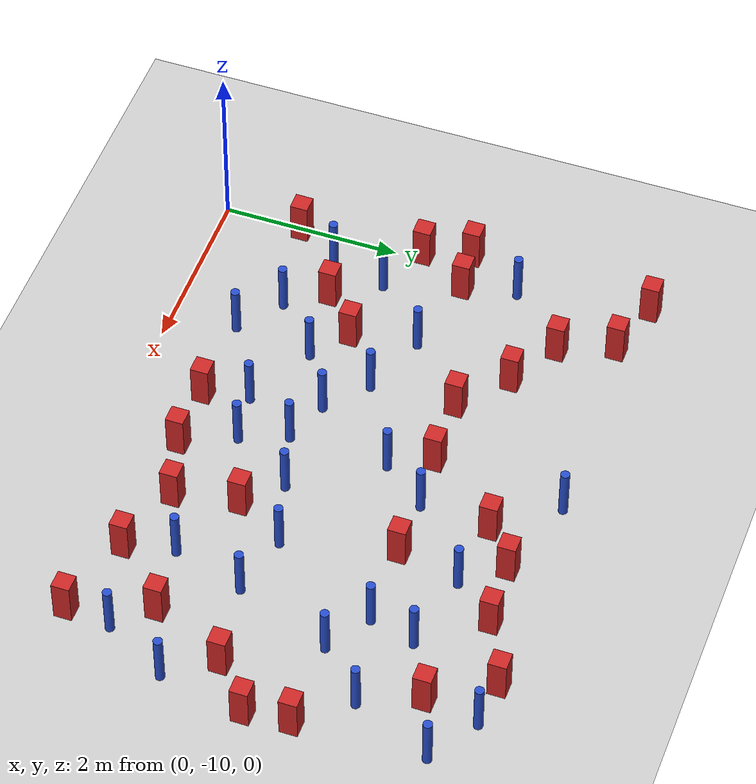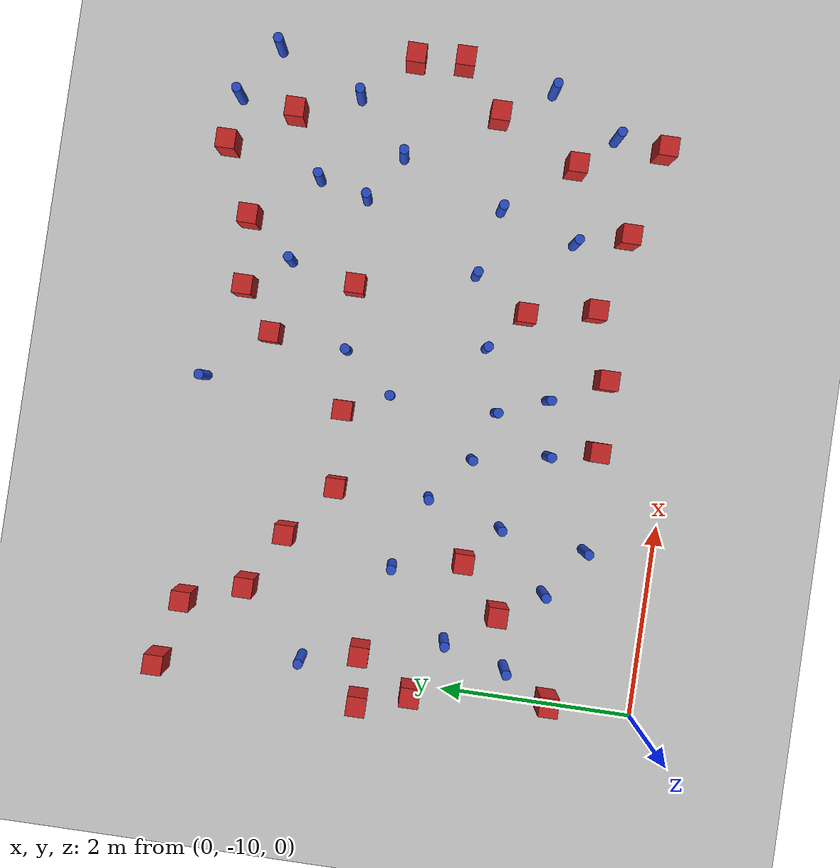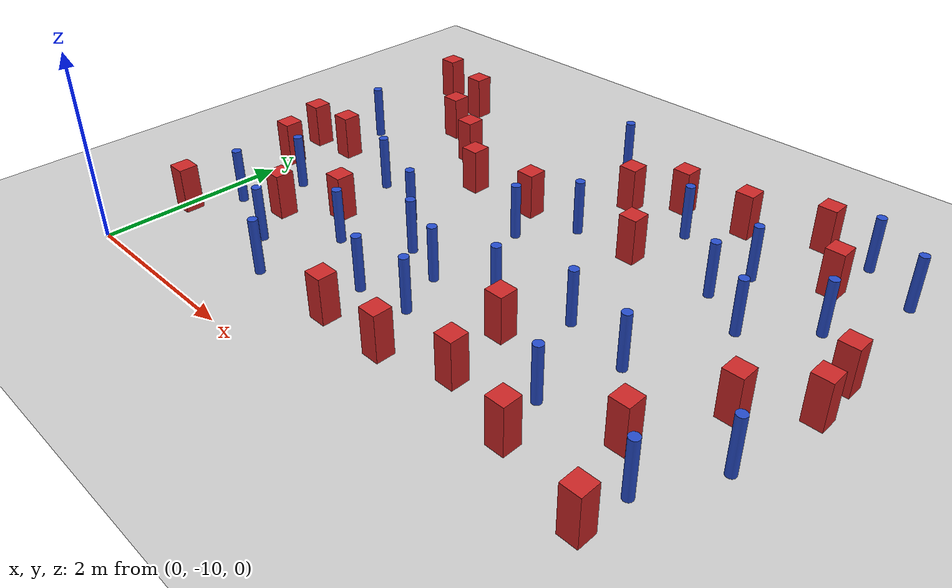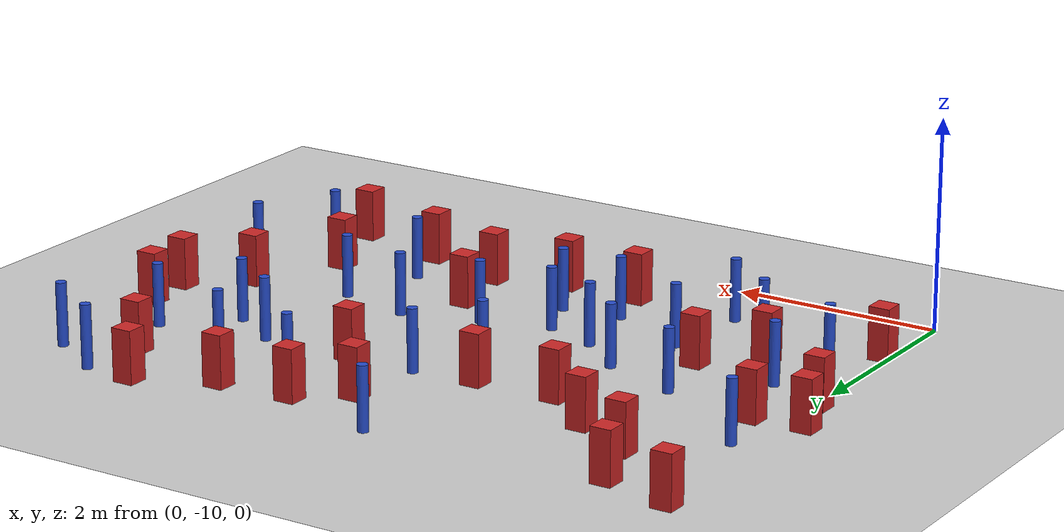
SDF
<sdf version="1.6">
 <world name="default">
  <model name="ground_plane">
   <static>1</static>
   <link name="link">
    <collision name="collision">
     <geometry><plane><normal>0 0 1</normal><size>100 100</size></plane></geometry>
     <surface><friction><ode><mu>100</mu><mu2>50</mu2></ode></friction></surface>
    </collision>
    <visual name="visual">
     <cast_shadows>0</cast_shadows>
     <geometry><plane><normal>0 0 1</normal><size>100 100</size></plane></geometry>
     <material>
      <ambient>1.0 1.0 1.0 1.0</ambient>
      <diffuse>0.8 0.8 0.8 1.0</diffuse>
      <specular>0.01 0.01 0.01 1.000000</specular>
     </material>
    </visual>
   </link>
  </model>
  <model name="pole_obstacle2">
   <static>true</static>
   <pose>1.97071160318 -7.58667702592 7.38925637345e-09 -8.471706928e-08 1.24976765202e-08 -1.7451309301e-07</pose>
   <link name="link">
    <pose>0 0 0.3 0 -0 0</pose>
    <inertial>
     <mass>1</mass>
     <inertia><ixx>0.145833</ixx><ixy>0</ixy><ixz>0</ixz><iyy>0.145833</iyy><iyz>0</iyz><izz>0.125</izz></inertia>
    </inertial>
    <collision name="collision">
     <geometry><cylinder><radius>0.05</radius><length>.6</length></cylinder></geometry>
    </collision>
    <visual name="visual">
     <geometry><cylinder><radius>0.05</radius><length>.6</length></cylinder></geometry>
     <material>
      <script><name>Gazebo/Blue</name><uri>file://media/materials/scripts/gazebo.material</uri></script>
     </material>
    </visual>
   </link>
  </model>
  <model name="square_post_obstacle6">
   <static>true</static>
   <pose>3.42528673768 -9.2332077088 1.91545236811e-07 -7.35059704564e-06 1.12565212e-07 2.39332434364e-05</pose>
   <link name="link">
    <pose>0 0 0.25 0 -0 0</pose>
    <inertial>
     <mass>100</mass>
     <inertia>
      <ixx>0.166667</ixx>
      <ixy>0</ixy>
      <ixz>0</ixz>
      <iyy>0.166667</iyy>
      <iyz>0</iyz>
      <izz>0.166667</izz>
     </inertia>
    </inertial>
    <collision name="collision"><geometry><box><size>.2 .2 .5</size></box></geometry></collision>
    <visual name="visual">
     <geometry><box><size>.2 .2 .5</size></box></geometry>
     <material>
      <script><name>Gazebo/Red</name><uri>file://media/materials/scripts/gazebo.material</uri></script>
     </material>
    </visual>
   </link>
  </model>
  <model name="pole_obstacle12">
   <static>true</static>
   <pose>5.93119352826 -8.99276088064 7.38925637345e-09 -8.471706928e-08 1.24976765081e-08 -1.74513093015e-07</pose>
   <link name="link">
    <pose>0 0 0.3 0 -0 0</pose>
    <inertial>
     <mass>1</mass>
     <inertia><ixx>0.145833</ixx><ixy>0</ixy><ixz>0</ixz><iyy>0.145833</iyy><iyz>0</iyz><izz>0.125</izz></inertia>
    </inertial>
    <collision name="collision">
     <geometry><cylinder><radius>0.05</radius><length>.6</length></cylinder></geometry>
    </collision>
    <visual name="visual">
     <geometry><cylinder><radius>0.05</radius><length>.6</length></cylinder></geometry>
     <material>
      <script><name>Gazebo/Blue</name><uri>file://media/materials/scripts/gazebo.material</uri></script>
     </material>
    </visual>
   </link>
  </model>
  <model name="pole_obstacle17">
   <static>true</static>
   <pose>2.56909360856 -8.75180454461 7.38925637345e-09 -8.47170692793e-08 1.24976764408e-08 -1.74513093041e-07</pose>
   <link name="link">
    <pose>0 0 0.3 0 -0 0</pose>
    <inertial>
     <mass>1</mass>
     <inertia><ixx>0.145833</ixx><ixy>0</ixy><ixz>0</ixz><iyy>0.145833</iyy><iyz>0</iyz><izz>0.125</izz></inertia>
    </inertial>
    <collision name="collision">
     <geometry><cylinder><radius>0.05</radius><length>.6</length></cylinder></geometry>
    </collision>
    <visual name="visual">
     <geometry><cylinder><radius>0.05</radius><length>.6</length></cylinder></geometry>
     <material>
      <script><name>Gazebo/Blue</name><uri>file://media/materials/scripts/gazebo.material</uri></script>
     </material>
    </visual>
   </link>
  </model>
  <model name="square_post_obstacle28">
   <static>true</static>
   <pose>1.40396660509 -6.17842980734 1.91545236811e-07 -7.35059704564e-06 1.12565212e-07 2.39332434364e-05</pose>
   <link name="link">
    <pose>0 0 0.25 0 -0 0</pose>
    <inertial>
     <mass>100</mass>
     <inertia>
      <ixx>0.166667</ixx>
      <ixy>0</ixy>
      <ixz>0</ixz>
      <iyy>0.166667</iyy>
      <iyz>0</iyz>
      <izz>0.166667</izz>
     </inertia>
    </inertial>
    <collision name="collision"><geometry><box><size>.2 .2 .5</size></box></geometry></collision>
    <visual name="visual">
     <geometry><box><size>.2 .2 .5</size></box></geometry>
     <material>
      <script><name>Gazebo/Red</name><uri>file://media/materials/scripts/gazebo.material</uri></script>
     </material>
    </visual>
   </link>
  </model>
  <model name="square_post_obstacle32">
   <static>true</static>
   <pose>5.58172185531 -8.61118597874 1.91545236811e-07 -7.35059704564e-06 1.12565212e-07 2.39332434364e-05</pose>
   <link name="link">
    <pose>0 0 0.25 0 -0 0</pose>
    <inertial>
     <mass>100</mass>
     <inertia>
      <ixx>0.166667</ixx>
      <ixy>0</ixy>
      <ixz>0</ixz>
      <iyy>0.166667</iyy>
      <iyz>0</iyz>
      <izz>0.166667</izz>
     </inertia>
    </inertial>
    <collision name="collision"><geometry><box><size>.2 .2 .5</size></box></geometry></collision>
    <visual name="visual">
     <geometry><box><size>.2 .2 .5</size></box></geometry>
     <material>
      <script><name>Gazebo/Red</name><uri>file://media/materials/scripts/gazebo.material</uri></script>
     </material>
    </visual>
   </link>
  </model>
  <model name="pole_obstacle30">
   <static>true</static>
   <pose>5.02868644802 -7.91412602588 7.38925637345e-09 -8.47170692796e-08 1.24976764786e-08 -1.74513093032e-07</pose>
   <link name="link">
    <pose>0 0 0.3 0 -0 0</pose>
    <inertial>
     <mass>1</mass>
     <inertia><ixx>0.145833</ixx><ixy>0</ixy><ixz>0</ixz><iyy>0.145833</iyy><iyz>0</iyz><izz>0.125</izz></inertia>
    </inertial>
    <collision name="collision">
     <geometry><cylinder><radius>0.05</radius><length>.6</length></cylinder></geometry>
    </collision>
    <visual name="visual">
     <geometry><cylinder><radius>0.05</radius><length>.6</length></cylinder></geometry>
     <material>
      <script><name>Gazebo/Blue</name><uri>file://media/materials/scripts/gazebo.material</uri></script>
     </material>
    </visual>
   </link>
  </model>
  <model name="pole_obstacle36">
   <static>true</static>
   <pose>0.537227378862 -7.95443706062 7.38925637345e-09 -8.47170692799e-08 1.24976764982e-08 -1.74513093021e-07</pose>
   <link name="link">
    <pose>0 0 0.3 0 -0 0</pose>
    <inertial>
     <mass>1</mass>
     <inertia><ixx>0.145833</ixx><ixy>0</ixy><ixz>0</ixz><iyy>0.145833</iyy><iyz>0</iyz><izz>0.125</izz></inertia>
    </inertial>
    <collision name="collision">
     <geometry><cylinder><radius>0.05</radius><length>.6</length></cylinder></geometry>
    </collision>
    <visual name="visual">
     <geometry><cylinder><radius>0.05</radius><length>.6</length></cylinder></geometry>
     <material>
      <script><name>Gazebo/Blue</name><uri>file://media/materials/scripts/gazebo.material</uri></script>
     </material>
    </visual>
   </link>
  </model>
  <model name="pole_obstacle40">
   <static>true</static>
   <pose>4.79022406759 -8.7171439386 7.38925637345e-09 -8.471706928e-08 1.24976765081e-08 -1.74513093015e-07</pose>
   <link name="link">
    <pose>0 0 0.3 0 -0 0</pose>
    <inertial>
     <mass>1</mass>
     <inertia><ixx>0.145833</ixx><ixy>0</ixy><ixz>0</ixz><iyy>0.145833</iyy><iyz>0</iyz><izz>0.125</izz></inertia>
    </inertial>
    <collision name="collision">
     <geometry><cylinder><radius>0.05</radius><length>.6</length></cylinder></geometry>
    </collision>
    <visual name="visual">
     <geometry><cylinder><radius>0.05</radius><length>.6</length></cylinder></geometry>
     <material>
      <script><name>Gazebo/Blue</name><uri>file://media/materials/scripts/gazebo.material</uri></script>
     </material>
    </visual>
   </link>
  </model>
  <model name="pole_obstacle44">
   <static>true</static>
   <pose>2.93795441188 -8.15360518143 7.38925637345e-09 -8.47170692793e-08 1.24976764408e-08 -1.74513093041e-07</pose>
   <link name="link">
    <pose>0 0 0.3 0 -0 0</pose>
    <inertial>
     <mass>1</mass>
     <inertia><ixx>0.145833</ixx><ixy>0</ixy><ixz>0</ixz><iyy>0.145833</iyy><iyz>0</iyz><izz>0.125</izz></inertia>
    </inertial>
    <collision name="collision">
     <geometry><cylinder><radius>0.05</radius><length>.6</length></cylinder></geometry>
    </collision>
    <visual name="visual">
     <geometry><cylinder><radius>0.05</radius><length>.6</length></cylinder></geometry>
     <material>
      <script><name>Gazebo/Blue</name><uri>file://media/materials/scripts/gazebo.material</uri></script>
     </material>
    </visual>
   </link>
  </model>
  <model name="square_post_obstacle49">
   <static>true</static>
   <pose>5.7312948398 -5.66216514473 1.91545236811e-07 -7.35059704564e-06 1.12565212e-07 2.39332434364e-05</pose>
   <link name="link">
    <pose>0 0 0.25 0 -0 0</pose>
    <inertial>
     <mass>100</mass>
     <inertia>
      <ixx>0.166667</ixx>
      <ixy>0</ixy>
      <ixz>0</ixz>
      <iyy>0.166667</iyy>
      <iyz>0</iyz>
      <izz>0.166667</izz>
     </inertia>
    </inertial>
    <collision name="collision"><geometry><box><size>.2 .2 .5</size></box></geometry></collision>
    <visual name="visual">
     <geometry><box><size>.2 .2 .5</size></box></geometry>
     <material>
      <script><name>Gazebo/Red</name><uri>file://media/materials/scripts/gazebo.material</uri></script>
     </material>
    </visual>
   </link>
  </model>
  <model name="square_post_obstacle50">
   <static>true</static>
   <pose>4.58564156272 -5.34331117135 1.91545236811e-07 -7.35059704564e-06 1.12565212e-07 2.39332434364e-05</pose>
   <link name="link">
    <pose>0 0 0.25 0 -0 0</pose>
    <inertial>
     <mass>100</mass>
     <inertia>
      <ixx>0.166667</ixx>
      <ixy>0</ixy>
      <ixz>0</ixz>
      <iyy>0.166667</iyy>
      <iyz>0</iyz>
      <izz>0.166667</izz>
     </inertia>
    </inertial>
    <collision name="collision"><geometry><box><size>.2 .2 .5</size></box></geometry></collision>
    <visual name="visual">
     <geometry><box><size>.2 .2 .5</size></box></geometry>
     <material>
      <script><name>Gazebo/Red</name><uri>file://media/materials/scripts/gazebo.material</uri></script>
     </material>
    </visual>
   </link>
  </model>
  <model name="pole_obstacle55">
   <static>true</static>
   <pose>0.346977114706 -8.60637457879 7.38925637345e-09 -8.47170692796e-08 1.24976764724e-08 -1.74513093036e-07</pose>
   <link name="link">
    <pose>0 0 0.3 0 -0 0</pose>
    <inertial>
     <mass>1</mass>
     <inertia><ixx>0.145833</ixx><ixy>0</ixy><ixz>0</ixz><iyy>0.145833</iyy><iyz>0</iyz><izz>0.125</izz></inertia>
    </inertial>
    <collision name="collision">
     <geometry><cylinder><radius>0.05</radius><length>.6</length></cylinder></geometry>
    </collision>
    <visual name="visual">
     <geometry><cylinder><radius>0.05</radius><length>.6</length></cylinder></geometry>
     <material>
      <script><name>Gazebo/Blue</name><uri>file://media/materials/scripts/gazebo.material</uri></script>
     </material>
    </visual>
   </link>
  </model>
  <model name="square_post_obstacle58">
   <static>true</static>
   <pose>1.94689493672 -6.62401268792 1.91545236811e-07 -7.35059704564e-06 1.12565212e-07 2.39332434364e-05</pose>
   <link name="link">
    <pose>0 0 0.25 0 -0 0</pose>
    <inertial>
     <mass>100</mass>
     <inertia>
      <ixx>0.166667</ixx>
      <ixy>0</ixy>
      <ixz>0</ixz>
      <iyy>0.166667</iyy>
      <iyz>0</iyz>
      <izz>0.166667</izz>
     </inertia>
    </inertial>
    <collision name="collision"><geometry><box><size>.2 .2 .5</size></box></geometry></collision>
    <visual name="visual">
     <geometry><box><size>.2 .2 .5</size></box></geometry>
     <material>
      <script><name>Gazebo/Red</name><uri>file://media/materials/scripts/gazebo.material</uri></script>
     </material>
    </visual>
   </link>
  </model>
  <model name="square_post_obstacle62">
   <static>true</static>
   <pose>3.86413966058 -5.39639171389 1.91545236811e-07 -7.35059704564e-06 1.12565212e-07 2.39332434364e-05</pose>
   <link name="link">
    <pose>0 0 0.25 0 -0 0</pose>
    <inertial>
     <mass>100</mass>
     <inertia>
      <ixx>0.166667</ixx>
      <ixy>0</ixy>
      <ixz>0</ixz>
      <iyy>0.166667</iyy>
      <iyz>0</iyz>
      <izz>0.166667</izz>
     </inertia>
    </inertial>
    <collision name="collision"><geometry><box><size>.2 .2 .5</size></box></geometry></collision>
    <visual name="visual">
     <geometry><box><size>.2 .2 .5</size></box></geometry>
     <material>
      <script><name>Gazebo/Red</name><uri>file://media/materials/scripts/gazebo.material</uri></script>
     </material>
    </visual>
   </link>
  </model>
  <model name="pole_obstacle65">
   <static>true</static>
   <pose>5.08239843322 -6.00313452589 7.38925637345e-09 -8.47170692796e-08 1.24976764786e-08 -1.74513093032e-07</pose>
   <link name="link">
    <pose>0 0 0.3 0 -0 0</pose>
    <inertial>
     <mass>1</mass>
     <inertia><ixx>0.145833</ixx><ixy>0</ixy><ixz>0</ixz><iyy>0.145833</iyy><iyz>0</iyz><izz>0.125</izz></inertia>
    </inertial>
    <collision name="collision">
     <geometry><cylinder><radius>0.05</radius><length>.6</length></cylinder></geometry>
    </collision>
    <visual name="visual">
     <geometry><cylinder><radius>0.05</radius><length>.6</length></cylinder></geometry>
     <material>
      <script><name>Gazebo/Blue</name><uri>file://media/materials/scripts/gazebo.material</uri></script>
     </material>
    </visual>
   </link>
  </model>
  <model name="square_post_obstacle68">
   <static>true</static>
   <pose>4.03613821509 -6.52834187034 1.91545236811e-07 -7.35059704564e-06 1.12565212e-07 2.39332434364e-05</pose>
   <link name="link">
    <pose>0 0 0.25 0 -0 0</pose>
    <inertial>
     <mass>100</mass>
     <inertia>
      <ixx>0.166667</ixx>
      <ixy>0</ixy>
      <ixz>0</ixz>
      <iyy>0.166667</iyy>
      <iyz>0</iyz>
      <izz>0.166667</izz>
     </inertia>
    </inertial>
    <collision name="collision"><geometry><box><size>.2 .2 .5</size></box></geometry></collision>
    <visual name="visual">
     <geometry><box><size>.2 .2 .5</size></box></geometry>
     <material>
      <script><name>Gazebo/Red</name><uri>file://media/materials/scripts/gazebo.material</uri></script>
     </material>
    </visual>
   </link>
  </model>
  <model name="pole_obstacle69">
   <static>true</static>
   <pose>3.35895421251 -6.53179889285 7.38925637345e-09 -8.47170692798e-08 1.24976765033e-08 -1.74513093019e-07</pose>
   <link name="link">
    <pose>0 0 0.3 0 -0 0</pose>
    <inertial>
     <mass>1</mass>
     <inertia><ixx>0.145833</ixx><ixy>0</ixy><ixz>0</ixz><iyy>0.145833</iyy><iyz>0</iyz><izz>0.125</izz></inertia>
    </inertial>
    <collision name="collision">
     <geometry><cylinder><radius>0.05</radius><length>.6</length></cylinder></geometry>
    </collision>
    <visual name="visual">
     <geometry><cylinder><radius>0.05</radius><length>.6</length></cylinder></geometry>
     <material>
      <script><name>Gazebo/Blue</name><uri>file://media/materials/scripts/gazebo.material</uri></script>
     </material>
    </visual>
   </link>
  </model>
  <model name="pole_obstacle78">
   <static>true</static>
   <pose>4.94740722257 -6.51567060402 7.38925637345e-09 -8.47170692796e-08 1.24976764786e-08 -1.74513093032e-07</pose>
   <link name="link">
    <pose>0 0 0.3 0 -0 0</pose>
    <inertial>
     <mass>1</mass>
     <inertia><ixx>0.145833</ixx><ixy>0</ixy><ixz>0</ixz><iyy>0.145833</iyy><iyz>0</iyz><izz>0.125</izz></inertia>
    </inertial>
    <collision name="collision">
     <geometry><cylinder><radius>0.05</radius><length>.6</length></cylinder></geometry>
    </collision>
    <visual name="visual">
     <geometry><cylinder><radius>0.05</radius><length>.6</length></cylinder></geometry>
     <material>
      <script><name>Gazebo/Blue</name><uri>file://media/materials/scripts/gazebo.material</uri></script>
     </material>
    </visual>
   </link>
  </model>
  <model name="pole_obstacle83">
   <static>true</static>
   <pose>2.95907554247 -7.04476230772 7.38925637345e-09 -8.47170692798e-08 1.24976765033e-08 -1.74513093019e-07</pose>
   <link name="link">
    <pose>0 0 0.3 0 -0 0</pose>
    <inertial>
     <mass>1</mass>
     <inertia><ixx>0.145833</ixx><ixy>0</ixy><ixz>0</ixz><iyy>0.145833</iyy><iyz>0</iyz><izz>0.125</izz></inertia>
    </inertial>
    <collision name="collision">
     <geometry><cylinder><radius>0.05</radius><length>.6</length></cylinder></geometry>
    </collision>
    <visual name="visual">
     <geometry><cylinder><radius>0.05</radius><length>.6</length></cylinder></geometry>
     <material>
      <script><name>Gazebo/Blue</name><uri>file://media/materials/scripts/gazebo.material</uri></script>
     </material>
    </visual>
   </link>
  </model>
  <model name="pole_obstacle88">
   <static>true</static>
   <pose>6.37821953984 -5.40702771249 7.38925637345e-09 -8.47170692796e-08 1.24976764786e-08 -1.74513093032e-07</pose>
   <link name="link">
    <pose>0 0 0.3 0 -0 0</pose>
    <inertial>
     <mass>1</mass>
     <inertia><ixx>0.145833</ixx><ixy>0</ixy><ixz>0</ixz><iyy>0.145833</iyy><iyz>0</iyz><izz>0.125</izz></inertia>
    </inertial>
    <collision name="collision">
     <geometry><cylinder><radius>0.05</radius><length>.6</length></cylinder></geometry>
    </collision>
    <visual name="visual">
     <geometry><cylinder><radius>0.05</radius><length>.6</length></cylinder></geometry>
     <material>
      <script><name>Gazebo/Blue</name><uri>file://media/materials/scripts/gazebo.material</uri></script>
     </material>
    </visual>
   </link>
  </model>
  <model name="pole_obstacle90">
   <static>true</static>
   <pose>5.43792396352 -6.83226718754 7.38925637345e-09 -8.47170692796e-08 1.24976764786e-08 -1.74513093032e-07</pose>
   <link name="link">
    <pose>0 0 0.3 0 -0 0</pose>
    <inertial>
     <mass>1</mass>
     <inertia><ixx>0.145833</ixx><ixy>0</ixy><ixz>0</ixz><iyy>0.145833</iyy><iyz>0</iyz><izz>0.125</izz></inertia>
    </inertial>
    <collision name="collision">
     <geometry><cylinder><radius>0.05</radius><length>.6</length></cylinder></geometry>
    </collision>
    <visual name="visual">
     <geometry><cylinder><radius>0.05</radius><length>.6</length></cylinder></geometry>
     <material>
      <script><name>Gazebo/Blue</name><uri>file://media/materials/scripts/gazebo.material</uri></script>
     </material>
    </visual>
   </link>
  </model>
  <model name="square_post_obstacle86">
   <static>true</static>
   <pose>1.37215571045 -8.03427711917 1.91545236811e-07 -7.35059704564e-06 1.12565212e-07 2.39332434364e-05</pose>
   <link name="link">
    <pose>0 0 0.25 0 -0 0</pose>
    <inertial>
     <mass>100</mass>
     <inertia>
      <ixx>0.166667</ixx>
      <ixy>0</ixy>
      <ixz>0</ixz>
      <iyy>0.166667</iyy>
      <iyz>0</iyz>
      <izz>0.166667</izz>
     </inertia>
    </inertial>
    <collision name="collision"><geometry><box><size>.2 .2 .5</size></box></geometry></collision>
    <visual name="visual">
     <geometry><box><size>.2 .2 .5</size></box></geometry>
     <material>
      <script><name>Gazebo/Red</name><uri>file://media/materials/scripts/gazebo.material</uri></script>
     </material>
    </visual>
   </link>
  </model>
  <model name="pole_obstacle103">
   <static>true</static>
   <pose>5.81826933849 -5.06153965831 7.38925637345e-09 -8.47170692796e-08 1.24976764786e-08 -1.74513093032e-07</pose>
   <link name="link">
    <pose>0 0 0.3 0 -0 0</pose>
    <inertial>
     <mass>1</mass>
     <inertia><ixx>0.145833</ixx><ixy>0</ixy><ixz>0</ixz><iyy>0.145833</iyy><iyz>0</iyz><izz>0.125</izz></inertia>
    </inertial>
    <collision name="collision">
     <geometry><cylinder><radius>0.05</radius><length>.6</length></cylinder></geometry>
    </collision>
    <visual name="visual">
     <geometry><cylinder><radius>0.05</radius><length>.6</length></cylinder></geometry>
     <material>
      <script><name>Gazebo/Blue</name><uri>file://media/materials/scripts/gazebo.material</uri></script>
     </material>
    </visual>
   </link>
  </model>
  <model name="square_post_obstacle93">
   <static>true</static>
   <pose>4.12318796171 -9.0195584608 1.91545236811e-07 -7.35059704564e-06 1.12565212e-07 2.39332434364e-05</pose>
   <link name="link">
    <pose>0 0 0.25 0 -0 0</pose>
    <inertial>
     <mass>100</mass>
     <inertia>
      <ixx>0.166667</ixx>
      <ixy>0</ixy>
      <ixz>0</ixz>
      <iyy>0.166667</iyy>
      <iyz>0</iyz>
      <izz>0.166667</izz>
     </inertia>
    </inertial>
    <collision name="collision"><geometry><box><size>.2 .2 .5</size></box></geometry></collision>
    <visual name="visual">
     <geometry><box><size>.2 .2 .5</size></box></geometry>
     <material>
      <script><name>Gazebo/Red</name><uri>file://media/materials/scripts/gazebo.material</uri></script>
     </material>
    </visual>
   </link>
  </model>
  <model name="pole_obstacle107">
   <static>true</static>
   <pose>1.65645513796 -9.25992549953 7.38925637345e-09 -8.47170692798e-08 1.24976764881e-08 -1.74513093027e-07</pose>
   <link name="link">
    <pose>0 0 0.3 0 -0 0</pose>
    <inertial>
     <mass>1</mass>
     <inertia><ixx>0.145833</ixx><ixy>0</ixy><ixz>0</ixz><iyy>0.145833</iyy><iyz>0</iyz><izz>0.125</izz></inertia>
    </inertial>
    <collision name="collision">
     <geometry><cylinder><radius>0.05</radius><length>.6</length></cylinder></geometry>
    </collision>
    <visual name="visual">
     <geometry><cylinder><radius>0.05</radius><length>.6</length></cylinder></geometry>
     <material>
      <script><name>Gazebo/Blue</name><uri>file://media/materials/scripts/gazebo.material</uri></script>
     </material>
    </visual>
   </link>
  </model>
  <model name="pole_obstacle113">
   <static>true</static>
   <pose>5.98952537739 -6.30201953331 7.38925637345e-09 -8.47170692796e-08 1.24976764786e-08 -1.74513093032e-07</pose>
   <link name="link">
    <pose>0 0 0.3 0 -0 0</pose>
    <inertial>
     <mass>1</mass>
     <inertia><ixx>0.145833</ixx><ixy>0</ixy><ixz>0</ixz><iyy>0.145833</iyy><iyz>0</iyz><izz>0.125</izz></inertia>
    </inertial>
    <collision name="collision">
     <geometry><cylinder><radius>0.05</radius><length>.6</length></cylinder></geometry>
    </collision>
    <visual name="visual">
     <geometry><cylinder><radius>0.05</radius><length>.6</length></cylinder></geometry>
     <material>
      <script><name>Gazebo/Blue</name><uri>file://media/materials/scripts/gazebo.material</uri></script>
     </material>
    </visual>
   </link>
  </model>
  <model name="square_post_obstacle116">
   <static>true</static>
   <pose>-0.205422437892 -7.15605311917 1.91545236811e-07 -7.35059704564e-06 1.12565212e-07 2.39332434364e-05</pose>
   <link name="link">
    <pose>0 0 0.25 0 -0 0</pose>
    <inertial>
     <mass>100</mass>
     <inertia>
      <ixx>0.166667</ixx>
      <ixy>0</ixy>
      <ixz>0</ixz>
      <iyy>0.166667</iyy>
      <iyz>0</iyz>
      <izz>0.166667</izz>
     </inertia>
    </inertial>
    <collision name="collision"><geometry><box><size>.2 .2 .5</size></box></geometry></collision>
    <visual name="visual">
     <geometry><box><size>.2 .2 .5</size></box></geometry>
     <material>
      <script><name>Gazebo/Red</name><uri>file://media/materials/scripts/gazebo.material</uri></script>
     </material>
    </visual>
   </link>
  </model>
  <model name="pole_obstacle136">
   <static>true</static>
   <pose>2.42459490403 -7.97144167803 7.38925637345e-09 -8.47170692799e-08 1.24976764977e-08 -1.74513093022e-07</pose>
   <link name="link">
    <pose>0 0 0.3 0 -0 0</pose>
    <inertial>
     <mass>1</mass>
     <inertia><ixx>0.145833</ixx><ixy>0</ixy><ixz>0</ixz><iyy>0.145833</iyy><iyz>0</iyz><izz>0.125</izz></inertia>
    </inertial>
    <collision name="collision">
     <geometry><cylinder><radius>0.05</radius><length>.6</length></cylinder></geometry>
    </collision>
    <visual name="visual">
     <geometry><cylinder><radius>0.05</radius><length>.6</length></cylinder></geometry>
     <material>
      <script><name>Gazebo/Blue</name><uri>file://media/materials/scripts/gazebo.material</uri></script>
     </material>
    </visual>
   </link>
  </model>
  <model name="pole_obstacle137">
   <static>true</static>
   <pose>0.157041547457 -6.51964934369 7.38925637345e-09 -8.471706928e-08 1.24976765036e-08 -1.74513093019e-07</pose>
   <link name="link">
    <pose>0 0 0.3 0 -0 0</pose>
    <inertial>
     <mass>1</mass>
     <inertia><ixx>0.145833</ixx><ixy>0</ixy><ixz>0</ixz><iyy>0.145833</iyy><iyz>0</iyz><izz>0.125</izz></inertia>
    </inertial>
    <collision name="collision">
     <geometry><cylinder><radius>0.05</radius><length>.6</length></cylinder></geometry>
    </collision>
    <visual name="visual">
     <geometry><cylinder><radius>0.05</radius><length>.6</length></cylinder></geometry>
     <material>
      <script><name>Gazebo/Blue</name><uri>file://media/materials/scripts/gazebo.material</uri></script>
     </material>
    </visual>
   </link>
  </model>
  <model name="square_post_obstacle123">
   <static>true</static>
   <pose>0.0641358761536 -9.08718445989 1.91545236811e-07 -7.35059704564e-06 1.12565212e-07 2.39332434364e-05</pose>
   <link name="link">
    <pose>0 0 0.25 0 -0 0</pose>
    <inertial>
     <mass>100</mass>
     <inertia>
      <ixx>0.166667</ixx>
      <ixy>0</ixy>
      <ixz>0</ixz>
      <iyy>0.166667</iyy>
      <iyz>0</iyz>
      <izz>0.166667</izz>
     </inertia>
    </inertial>
    <collision name="collision"><geometry><box><size>.2 .2 .5</size></box></geometry></collision>
    <visual name="visual">
     <geometry><box><size>.2 .2 .5</size></box></geometry>
     <material>
      <script><name>Gazebo/Red</name><uri>file://media/materials/scripts/gazebo.material</uri></script>
     </material>
    </visual>
   </link>
  </model>
  <model name="square_post_obstacle137">
   <static>true</static>
   <pose>5.99451301476 -7.75398972359 1.91545236811e-07 -7.35059704564e-06 1.12565212e-07 2.39332434364e-05</pose>
   <link name="link">
    <pose>0 0 0.25 0 -0 0</pose>
    <inertial>
     <mass>100</mass>
     <inertia>
      <ixx>0.166667</ixx>
      <ixy>0</ixy>
      <ixz>0</ixz>
      <iyy>0.166667</iyy>
      <iyz>0</iyz>
      <izz>0.166667</izz>
     </inertia>
    </inertial>
    <collision name="collision"><geometry><box><size>.2 .2 .5</size></box></geometry></collision>
    <visual name="visual">
     <geometry><box><size>.2 .2 .5</size></box></geometry>
     <material>
      <script><name>Gazebo/Red</name><uri>file://media/materials/scripts/gazebo.material</uri></script>
     </material>
    </visual>
   </link>
  </model>
  <model name="square_post_obstacle139">
   <static>true</static>
   <pose>-0.0810632049058 -5.0590597428 1.91545236811e-07 -7.35059704564e-06 1.12565212e-07 2.39332434364e-05</pose>
   <link name="link">
    <pose>0 0 0.25 0 -0 0</pose>
    <inertial>
     <mass>100</mass>
     <inertia>
      <ixx>0.166667</ixx>
      <ixy>0</ixy>
      <ixz>0</ixz>
      <iyy>0.166667</iyy>
      <iyz>0</iyz>
      <izz>0.166667</izz>
     </inertia>
    </inertial>
    <collision name="collision"><geometry><box><size>.2 .2 .5</size></box></geometry></collision>
    <visual name="visual">
     <geometry><box><size>.2 .2 .5</size></box></geometry>
     <material>
      <script><name>Gazebo/Red</name><uri>file://media/materials/scripts/gazebo.material</uri></script>
     </material>
    </visual>
   </link>
  </model>
  <model name="pole_obstacle151">
   <static>true</static>
   <pose>4.32214451662 -7.75103194586 7.38925637345e-09 -8.47170692796e-08 1.24976764786e-08 -1.74513093032e-07</pose>
   <link name="link">
    <pose>0 0 0.3 0 -0 0</pose>
    <inertial>
     <mass>1</mass>
     <inertia><ixx>0.145833</ixx><ixy>0</ixy><ixz>0</ixz><iyy>0.145833</iyy><iyz>0</iyz><izz>0.125</izz></inertia>
    </inertial>
    <collision name="collision">
     <geometry><cylinder><radius>0.05</radius><length>.6</length></cylinder></geometry>
    </collision>
    <visual name="visual">
     <geometry><cylinder><radius>0.05</radius><length>.6</length></cylinder></geometry>
     <material>
      <script><name>Gazebo/Blue</name><uri>file://media/materials/scripts/gazebo.material</uri></script>
     </material>
    </visual>
   </link>
  </model>
  <model name="square_post_obstacle144">
   <static>true</static>
   <pose>0.81791523622 -5.85101851387 1.91545236811e-07 -7.35059704564e-06 1.12565212e-07 2.39332434364e-05</pose>
   <link name="link">
    <pose>0 0 0.25 0 -0 0</pose>
    <inertial>
     <mass>100</mass>
     <inertia>
      <ixx>0.166667</ixx>
      <ixy>0</ixy>
      <ixz>0</ixz>
      <iyy>0.166667</iyy>
      <iyz>0</iyz>
      <izz>0.166667</izz>
     </inertia>
    </inertial>
    <collision name="collision"><geometry><box><size>.2 .2 .5</size></box></geometry></collision>
    <visual name="visual">
     <geometry><box><size>.2 .2 .5</size></box></geometry>
     <material>
      <script><name>Gazebo/Red</name><uri>file://media/materials/scripts/gazebo.material</uri></script>
     </material>
    </visual>
   </link>
  </model>
  <model name="square_post_obstacle147">
   <static>true</static>
   <pose>2.74033327594 -6.58578973078 1.91545236811e-07 -7.35059704564e-06 1.12565212e-07 2.39332434364e-05</pose>
   <link name="link">
    <pose>0 0 0.25 0 -0 0</pose>
    <inertial>
     <mass>100</mass>
     <inertia>
      <ixx>0.166667</ixx>
      <ixy>0</ixy>
      <ixz>0</ixz>
      <iyy>0.166667</iyy>
      <iyz>0</iyz>
      <izz>0.166667</izz>
     </inertia>
    </inertial>
    <collision name="collision"><geometry><box><size>.2 .2 .5</size></box></geometry></collision>
    <visual name="visual">
     <geometry><box><size>.2 .2 .5</size></box></geometry>
     <material>
      <script><name>Gazebo/Red</name><uri>file://media/materials/scripts/gazebo.material</uri></script>
     </material>
    </visual>
   </link>
  </model>
  <model name="pole_obstacle157">
   <static>true</static>
   <pose>1.16564151641 -8.89598190228 7.38925637345e-09 -8.47170692798e-08 1.24976764881e-08 -1.74513093027e-07</pose>
   <link name="link">
    <pose>0 0 0.3 0 -0 0</pose>
    <inertial>
     <mass>1</mass>
     <inertia><ixx>0.145833</ixx><ixy>0</ixy><ixz>0</ixz><iyy>0.145833</iyy><iyz>0</iyz><izz>0.125</izz></inertia>
    </inertial>
    <collision name="collision">
     <geometry><cylinder><radius>0.05</radius><length>.6</length></cylinder></geometry>
    </collision>
    <visual name="visual">
     <geometry><cylinder><radius>0.05</radius><length>.6</length></cylinder></geometry>
     <material>
      <script><name>Gazebo/Blue</name><uri>file://media/materials/scripts/gazebo.material</uri></script>
     </material>
    </visual>
   </link>
  </model>
  <model name="pole_obstacle163">
   <static>true</static>
   <pose>2.89370007261 -5.11076561952 7.38925637345e-09 -8.47170692798e-08 1.24976765033e-08 -1.74513093019e-07</pose>
   <link name="link">
    <pose>0 0 0.3 0 -0 0</pose>
    <inertial>
     <mass>1</mass>
     <inertia><ixx>0.145833</ixx><ixy>0</ixy><ixz>0</ixz><iyy>0.145833</iyy><iyz>0</iyz><izz>0.125</izz></inertia>
    </inertial>
    <collision name="collision">
     <geometry><cylinder><radius>0.05</radius><length>.6</length></cylinder></geometry>
    </collision>
    <visual name="visual">
     <geometry><cylinder><radius>0.05</radius><length>.6</length></cylinder></geometry>
     <material>
      <script><name>Gazebo/Blue</name><uri>file://media/materials/scripts/gazebo.material</uri></script>
     </material>
    </visual>
   </link>
  </model>
  <model name="square_post_obstacle159">
   <static>true</static>
   <pose>2.68403953888 -9.24365625702 1.91545236811e-07 -7.35059704564e-06 1.12565212e-07 2.39332434364e-05</pose>
   <link name="link">
    <pose>0 0 0.25 0 -0 0</pose>
    <inertial>
     <mass>100</mass>
     <inertia>
      <ixx>0.166667</ixx>
      <ixy>0</ixy>
      <ixz>0</ixz>
      <iyy>0.166667</iyy>
      <iyz>0</iyz>
      <izz>0.166667</izz>
     </inertia>
    </inertial>
    <collision name="collision"><geometry><box><size>.2 .2 .5</size></box></geometry></collision>
    <visual name="visual">
     <geometry><box><size>.2 .2 .5</size></box></geometry>
     <material>
      <script><name>Gazebo/Red</name><uri>file://media/materials/scripts/gazebo.material</uri></script>
     </material>
    </visual>
   </link>
  </model>
  <model name="square_post_obstacle164">
   <static>true</static>
   <pose>3.98885448684 -8.31109415712 1.91545236811e-07 -7.35059704564e-06 1.12565212e-07 2.39332434364e-05</pose>
   <link name="link">
    <pose>0 0 0.25 0 -0 0</pose>
    <inertial>
     <mass>100</mass>
     <inertia>
      <ixx>0.166667</ixx>
      <ixy>0</ixy>
      <ixz>0</ixz>
      <iyy>0.166667</iyy>
      <iyz>0</iyz>
      <izz>0.166667</izz>
     </inertia>
    </inertial>
    <collision name="collision"><geometry><box><size>.2 .2 .5</size></box></geometry></collision>
    <visual name="visual">
     <geometry><box><size>.2 .2 .5</size></box></geometry>
     <material>
      <script><name>Gazebo/Red</name><uri>file://media/materials/scripts/gazebo.material</uri></script>
     </material>
    </visual>
   </link>
  </model>
  <model name="square_post_obstacle166">
   <static>true</static>
   <pose>5.31001641526 -5.0129956839 1.91545236811e-07 -7.35059704564e-06 1.12565212e-07 2.39332434364e-05</pose>
   <link name="link">
    <pose>0 0 0.25 0 -0 0</pose>
    <inertial>
     <mass>100</mass>
     <inertia>
      <ixx>0.166667</ixx>
      <ixy>0</ixy>
      <ixz>0</ixz>
      <iyy>0.166667</iyy>
      <iyz>0</iyz>
      <izz>0.166667</izz>
     </inertia>
    </inertial>
    <collision name="collision"><geometry><box><size>.2 .2 .5</size></box></geometry></collision>
    <visual name="visual">
     <geometry><box><size>.2 .2 .5</size></box></geometry>
     <material>
      <script><name>Gazebo/Red</name><uri>file://media/materials/scripts/gazebo.material</uri></script>
     </material>
    </visual>
   </link>
  </model>
  <model name="square_post_obstacle169">
   <static>true</static>
   <pose>6.49894969619 -7.31993522957 1.91545236811e-07 -7.35059704564e-06 1.12565212e-07 2.39332434364e-05</pose>
   <link name="link">
    <pose>0 0 0.25 0 -0 0</pose>
    <inertial>
     <mass>100</mass>
     <inertia>
      <ixx>0.166667</ixx>
      <ixy>0</ixy>
      <ixz>0</ixz>
      <iyy>0.166667</iyy>
      <iyz>0</iyz>
      <izz>0.166667</izz>
     </inertia>
    </inertial>
    <collision name="collision"><geometry><box><size>.2 .2 .5</size></box></geometry></collision>
    <visual name="visual">
     <geometry><box><size>.2 .2 .5</size></box></geometry>
     <material>
      <script><name>Gazebo/Red</name><uri>file://media/materials/scripts/gazebo.material</uri></script>
     </material>
    </visual>
   </link>
  </model>
  <model name="pole_obstacle179">
   <static>true</static>
   <pose>3.58715651924 -7.96222430054 7.38925637345e-09 -8.47170692793e-08 1.24976764454e-08 -1.74513093039e-07</pose>
   <link name="link">
    <pose>0 0 0.3 0 -0 0</pose>
    <inertial>
     <mass>1</mass>
     <inertia><ixx>0.145833</ixx><ixy>0</ixy><ixz>0</ixz><iyy>0.145833</iyy><iyz>0</iyz><izz>0.125</izz></inertia>
    </inertial>
    <collision name="collision">
     <geometry><cylinder><radius>0.05</radius><length>.6</length></cylinder></geometry>
    </collision>
    <visual name="visual">
     <geometry><cylinder><radius>0.05</radius><length>.6</length></cylinder></geometry>
     <material>
      <script><name>Gazebo/Blue</name><uri>file://media/materials/scripts/gazebo.material</uri></script>
     </material>
    </visual>
   </link>
  </model>
  <model name="square_post_obstacle171">
   <static>true</static>
   <pose>0.29518032609 -7.10853706246 1.91545236811e-07 -7.35059704564e-06 1.12565212e-07 2.39332434364e-05</pose>
   <link name="link">
    <pose>0 0 0.25 0 -0 0</pose>
    <inertial>
     <mass>100</mass>
     <inertia>
      <ixx>0.166667</ixx>
      <ixy>0</ixy>
      <ixz>0</ixz>
      <iyy>0.166667</iyy>
      <iyz>0</iyz>
      <izz>0.166667</izz>
     </inertia>
    </inertial>
    <collision name="collision"><geometry><box><size>.2 .2 .5</size></box></geometry></collision>
    <visual name="visual">
     <geometry><box><size>.2 .2 .5</size></box></geometry>
     <material>
      <script><name>Gazebo/Red</name><uri>file://media/materials/scripts/gazebo.material</uri></script>
     </material>
    </visual>
   </link>
  </model>
  <model name="square_post_obstacle177">
   <static>true</static>
   <pose>4.93290582222 -9.2500024907 1.91545236811e-07 -7.35059704564e-06 1.12565212e-07 2.39332434364e-05</pose>
   <link name="link">
    <pose>0 0 0.25 0 -0 0</pose>
    <inertial>
     <mass>100</mass>
     <inertia>
      <ixx>0.166667</ixx>
      <ixy>0</ixy>
      <ixz>0</ixz>
      <iyy>0.166667</iyy>
      <iyz>0</iyz>
      <izz>0.166667</izz>
     </inertia>
    </inertial>
    <collision name="collision"><geometry><box><size>.2 .2 .5</size></box></geometry></collision>
    <visual name="visual">
     <geometry><box><size>.2 .2 .5</size></box></geometry>
     <material>
      <script><name>Gazebo/Red</name><uri>file://media/materials/scripts/gazebo.material</uri></script>
     </material>
    </visual>
   </link>
  </model>
  <model name="square_post_obstacle180">
   <static>true</static>
   <pose>6.45669577789 -6.81417773572 1.91545236811e-07 -7.35059704564e-06 1.12565212e-07 2.39332434364e-05</pose>
   <link name="link">
    <pose>0 0 0.25 0 -0 0</pose>
    <inertial>
     <mass>100</mass>
     <inertia>
      <ixx>0.166667</ixx>
      <ixy>0</ixy>
      <ixz>0</ixz>
      <iyy>0.166667</iyy>
      <iyz>0</iyz>
      <izz>0.166667</izz>
     </inertia>
    </inertial>
    <collision name="collision"><geometry><box><size>.2 .2 .5</size></box></geometry></collision>
    <visual name="visual">
     <geometry><box><size>.2 .2 .5</size></box></geometry>
     <material>
      <script><name>Gazebo/Red</name><uri>file://media/materials/scripts/gazebo.material</uri></script>
     </material>
    </visual>
   </link>
  </model>
  <model name="square_post_obstacle186">
   <static>true</static>
   <pose>5.8777870736 -9.49744866187 1.91545236811e-07 -7.35059704564e-06 1.12565212e-07 2.39332434364e-05</pose>
   <link name="link">
    <pose>0 0 0.25 0 -0 0</pose>
    <inertial>
     <mass>100</mass>
     <inertia>
      <ixx>0.166667</ixx>
      <ixy>0</ixy>
      <ixz>0</ixz>
      <iyy>0.166667</iyy>
      <iyz>0</iyz>
      <izz>0.166667</izz>
     </inertia>
    </inertial>
    <collision name="collision"><geometry><box><size>.2 .2 .5</size></box></geometry></collision>
    <visual name="visual">
     <geometry><box><size>.2 .2 .5</size></box></geometry>
     <material>
      <script><name>Gazebo/Red</name><uri>file://media/materials/scripts/gazebo.material</uri></script>
     </material>
    </visual>
   </link>
  </model>
  <model name="pole_obstacle192">
   <static>true</static>
   <pose>6.32913676405 -8.28013459999 7.38925637345e-09 -8.471706928e-08 1.24976765081e-08 -1.74513093015e-07</pose>
   <link name="link">
    <pose>0 0 0.3 0 -0 0</pose>
    <inertial>
     <mass>1</mass>
     <inertia><ixx>0.145833</ixx><ixy>0</ixy><ixz>0</ixz><iyy>0.145833</iyy><iyz>0</iyz><izz>0.125</izz></inertia>
    </inertial>
    <collision name="collision">
     <geometry><cylinder><radius>0.05</radius><length>.6</length></cylinder></geometry>
    </collision>
    <visual name="visual">
     <geometry><cylinder><radius>0.05</radius><length>.6</length></cylinder></geometry>
     <material>
      <script><name>Gazebo/Blue</name><uri>file://media/materials/scripts/gazebo.material</uri></script>
     </material>
    </visual>
   </link>
  </model>
  <model name="pole_obstacle196">
   <static>true</static>
   <pose>1.76480577568 -8.36281788104 7.38925637345e-09 -8.47170692798e-08 1.24976764881e-08 -1.74513093027e-07</pose>
   <link name="link">
    <pose>0 0 0.3 0 -0 0</pose>
    <inertial>
     <mass>1</mass>
     <inertia><ixx>0.145833</ixx><ixy>0</ixy><ixz>0</ixz><iyy>0.145833</iyy><iyz>0</iyz><izz>0.125</izz></inertia>
    </inertial>
    <collision name="collision">
     <geometry><cylinder><radius>0.05</radius><length>.6</length></cylinder></geometry>
    </collision>
    <visual name="visual">
     <geometry><cylinder><radius>0.05</radius><length>.6</length></cylinder></geometry>
     <material>
      <script><name>Gazebo/Blue</name><uri>file://media/materials/scripts/gazebo.material</uri></script>
     </material>
    </visual>
   </link>
  </model>
  <model name="pole_obstacle198">
   <static>true</static>
   <pose>1.22379023441 -7.31251363615 7.38925637345e-09 -8.47170692799e-08 1.24976765033e-08 -1.74513093018e-07</pose>
   <link name="link">
    <pose>0 0 0.3 0 -0 0</pose>
    <inertial>
     <mass>1</mass>
     <inertia><ixx>0.145833</ixx><ixy>0</ixy><ixz>0</ixz><iyy>0.145833</iyy><iyz>0</iyz><izz>0.125</izz></inertia>
    </inertial>
    <collision name="collision">
     <geometry><cylinder><radius>0.05</radius><length>.6</length></cylinder></geometry>
    </collision>
    <visual name="visual">
     <geometry><cylinder><radius>0.05</radius><length>.6</length></cylinder></geometry>
     <material>
      <script><name>Gazebo/Blue</name><uri>file://media/materials/scripts/gazebo.material</uri></script>
     </material>
    </visual>
   </link>
  </model>
  <model name="square_post_obstacle192">
   <static>true</static>
   <pose>3.42403277626 -5.73935181065 1.91545236811e-07 -7.35059704564e-06 1.12565212e-07 2.39332434364e-05</pose>
   <link name="link">
    <pose>0 0 0.25 0 -0 0</pose>
    <inertial>
     <mass>100</mass>
     <inertia>
      <ixx>0.166667</ixx>
      <ixy>0</ixy>
      <ixz>0</ixz>
      <iyy>0.166667</iyy>
      <iyz>0</iyz>
      <izz>0.166667</izz>
     </inertia>
    </inertial>
    <collision name="collision"><geometry><box><size>.2 .2 .5</size></box></geometry></collision>
    <visual name="visual">
     <geometry><box><size>.2 .2 .5</size></box></geometry>
     <material>
      <script><name>Gazebo/Red</name><uri>file://media/materials/scripts/gazebo.material</uri></script>
     </material>
    </visual>
   </link>
  </model>
  <model name="square_post_obstacle201">
   <static>true</static>
   <pose>-0.0420645462445 -7.67975768032 1.91545236811e-07 -7.35059704564e-06 1.12565212e-07 2.39332434364e-05</pose>
   <link name="link">
    <pose>0 0 0.25 0 -0 0</pose>
    <inertial>
     <mass>100</mass>
     <inertia>
      <ixx>0.166667</ixx>
      <ixy>0</ixy>
      <ixz>0</ixz>
      <iyy>0.166667</iyy>
      <iyz>0</iyz>
      <izz>0.166667</izz>
     </inertia>
    </inertial>
    <collision name="collision"><geometry><box><size>.2 .2 .5</size></box></geometry></collision>
    <visual name="visual">
     <geometry><box><size>.2 .2 .5</size></box></geometry>
     <material>
      <script><name>Gazebo/Red</name><uri>file://media/materials/scripts/gazebo.material</uri></script>
     </material>
    </visual>
   </link>
  </model>
  <model name="pole_obstacle209">
   <static>true</static>
   <pose>4.19755010563 -5.82920588407 7.38925637345e-09 -8.47170692796e-08 1.24976764786e-08 -1.74513093032e-07</pose>
   <link name="link">
    <pose>0 0 0.3 0 -0 0</pose>
    <inertial>
     <mass>1</mass>
     <inertia><ixx>0.145833</ixx><ixy>0</ixy><ixz>0</ixz><iyy>0.145833</iyy><iyz>0</iyz><izz>0.125</izz></inertia>
    </inertial>
    <collision name="collision">
     <geometry><cylinder><radius>0.05</radius><length>.6</length></cylinder></geometry>
    </collision>
    <visual name="visual">
     <geometry><cylinder><radius>0.05</radius><length>.6</length></cylinder></geometry>
     <material>
      <script><name>Gazebo/Blue</name><uri>file://media/materials/scripts/gazebo.material</uri></script>
     </material>
    </visual>
   </link>
  </model>
  <model name="pole_obstacle211">
   <static>true</static>
   <pose>3.13800604639 -8.66909299085 7.38925637345e-09 -8.47170692793e-08 1.24976764408e-08 -1.74513093041e-07</pose>
   <link name="link">
    <pose>0 0 0.3 0 -0 0</pose>
    <inertial>
     <mass>1</mass>
     <inertia><ixx>0.145833</ixx><ixy>0</ixy><ixz>0</ixz><iyy>0.145833</iyy><iyz>0</iyz><izz>0.125</izz></inertia>
    </inertial>
    <collision name="collision">
     <geometry><cylinder><radius>0.05</radius><length>.6</length></cylinder></geometry>
    </collision>
    <visual name="visual">
     <geometry><cylinder><radius>0.05</radius><length>.6</length></cylinder></geometry>
     <material>
      <script><name>Gazebo/Blue</name><uri>file://media/materials/scripts/gazebo.material</uri></script>
     </material>
    </visual>
   </link>
  </model>
  <model name="square_post_obstacle204">
   <static>true</static>
   <pose>0.886629964805 -8.44997001192 1.91545236811e-07 -7.35059704564e-06 1.12565212e-07 2.39332434364e-05</pose>
   <link name="link">
    <pose>0 0 0.25 0 -0 0</pose>
    <inertial>
     <mass>100</mass>
     <inertia>
      <ixx>0.166667</ixx>
      <ixy>0</ixy>
      <ixz>0</ixz>
      <iyy>0.166667</iyy>
      <iyz>0</iyz>
      <izz>0.166667</izz>
     </inertia>
    </inertial>
    <collision name="collision"><geometry><box><size>.2 .2 .5</size></box></geometry></collision>
    <visual name="visual">
     <geometry><box><size>.2 .2 .5</size></box></geometry>
     <material>
      <script><name>Gazebo/Red</name><uri>file://media/materials/scripts/gazebo.material</uri></script>
     </material>
    </visual>
   </link>
  </model>
  <model name="square_post_obstacle205">
   <static>true</static>
   <pose>0.591958964805 -5.23932001192 1.91545236811e-07 -7.35059704564e-06 1.12565212e-07 2.39332434364e-05</pose>
   <link name="link">
    <pose>0 0 0.25 0 -0 0</pose>
    <inertial>
     <mass>100</mass>
     <inertia>
      <ixx>0.166667</ixx>
      <ixy>0</ixy>
      <ixz>0</ixz>
      <iyy>0.166667</iyy>
      <iyz>0</iyz>
      <izz>0.166667</izz>
     </inertia>
    </inertial>
    <collision name="collision"><geometry><box><size>.2 .2 .5</size></box></geometry></collision>
    <visual name="visual">
     <geometry><box><size>.2 .2 .5</size></box></geometry>
     <material>
      <script><name>Gazebo/Red</name><uri>file://media/materials/scripts/gazebo.material</uri></script>
     </material>
    </visual>
   </link>
  </model>
 </world>
</sdf>
